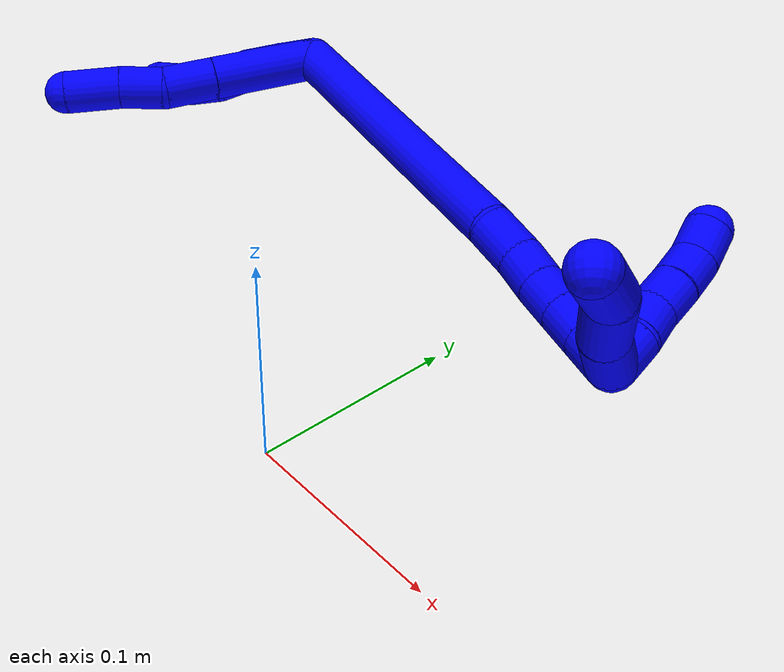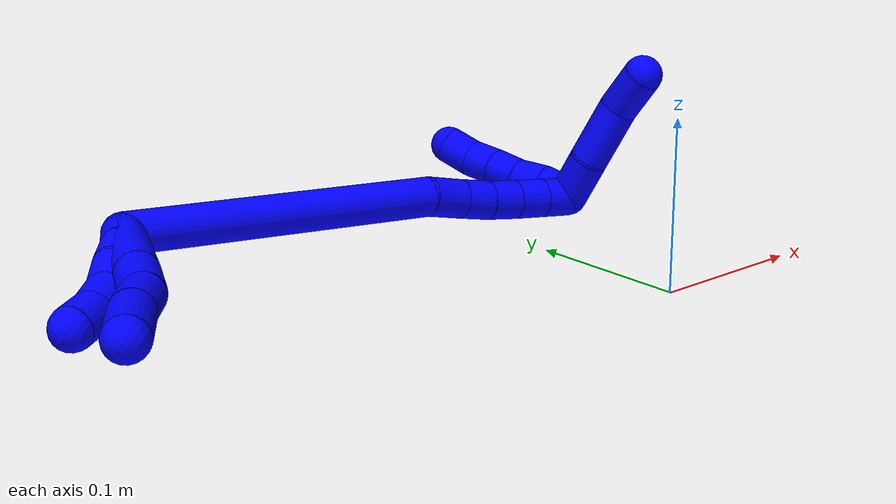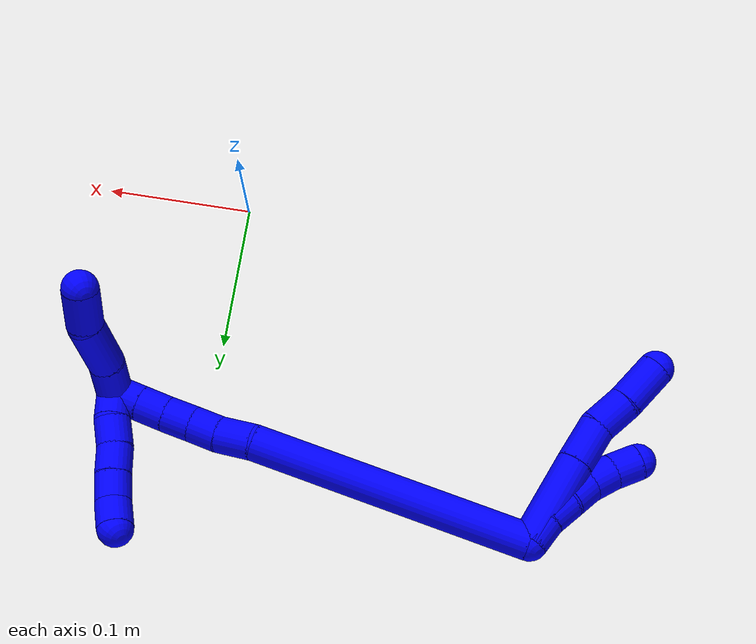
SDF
<sdf version="1.7">
 <world name="default">
  <model name="1">
   <static>0</static>
   <link name="1">
    <collision name="collision-cylinder-e_1_2_8">
     <pose>-0.027826 -0.007752 -0.01161 2.55288 -1.10579 -2.2283</pose>
     <geometry><cylinder><radius>0.0125</radius><length>0.062263</length></cylinder></geometry>
     <surface>
      <friction><ode><mu>1.16</mu><mu2>1.16</mu2><slip1>0</slip1><slip2>0</slip2></ode></friction>
      <contact><ode><kp>1e+06</kp><kd>1</kd><max_vel>0</max_vel><min_depth>0.001</min_depth></ode></contact>
     </surface>
    </collision>
    <visual name="visual-cylinder-e_1_2_8">
     <pose>-0.027826 -0.007752 -0.01161 2.55288 -1.10579 -2.2283</pose>
     <geometry><cylinder><radius>0.0125</radius><length>0.062263</length></cylinder></geometry>
     <material><ambient>0 0 1 1</ambient></material>
    </visual>
    <collision name="collision-cylinder-e_2_8_9">
     <pose>-0.06913 -0.018833 -0.028626 2.58964 -1.13058 -2.3018</pose>
     <geometry><cylinder><radius>0.0125</radius><length>0.029796</length></cylinder></geometry>
     <surface>
      <friction><ode><mu>1.16</mu><mu2>1.16</mu2><slip1>0</slip1><slip2>0</slip2></ode></friction>
      <contact><ode><kp>1e+06</kp><kd>1</kd><max_vel>0</max_vel><min_depth>0.001</min_depth></ode></contact>
     </surface>
    </collision>
    <visual name="visual-cylinder-e_2_8_9">
     <pose>-0.06913 -0.018833 -0.028626 2.58964 -1.13058 -2.3018</pose>
     <geometry><cylinder><radius>0.0125</radius><length>0.029796</length></cylinder></geometry>
     <material><ambient>0 0 1 1</ambient></material>
    </visual>
    <collision name="collision-cylinder-e_3_9_10">
     <pose>-0.095227 -0.02409 -0.034992 2.03284 -1.4017 -1.87549</pose>
     <geometry><cylinder><radius>0.0125</radius><length>0.025605</length></cylinder></geometry>
     <surface>
      <friction><ode><mu>1.16</mu><mu2>1.16</mu2><slip1>0</slip1><slip2>0</slip2></ode></friction>
      <contact><ode><kp>1e+06</kp><kd>1</kd><max_vel>0</max_vel><min_depth>0.001</min_depth></ode></contact>
     </surface>
    </collision>
    <visual name="visual-cylinder-e_3_9_10">
     <pose>-0.095227 -0.02409 -0.034992 2.03284 -1.4017 -1.87549</pose>
     <geometry><cylinder><radius>0.0125</radius><length>0.025605</length></cylinder></geometry>
     <material><ambient>0 0 1 1</ambient></material>
    </visual>
    <collision name="collision-cylinder-e_4_10_6">
     <pose>-0.123479 -0.028522 -0.039237 2.49025 -1.31255 -2.31513</pose>
     <geometry><cylinder><radius>0.0125</radius><length>0.032336</length></cylinder></geometry>
     <surface>
      <friction><ode><mu>1.16</mu><mu2>1.16</mu2><slip1>0</slip1><slip2>0</slip2></ode></friction>
      <contact><ode><kp>1e+06</kp><kd>1</kd><max_vel>0</max_vel><min_depth>0.001</min_depth></ode></contact>
     </surface>
    </collision>
    <visual name="visual-cylinder-e_4_10_6">
     <pose>-0.123479 -0.028522 -0.039237 2.49025 -1.31255 -2.31513</pose>
     <geometry><cylinder><radius>0.0125</radius><length>0.032336</length></cylinder></geometry>
     <material><ambient>0 0 1 1</ambient></material>
    </visual>
    <collision name="collision-cylinder-e_1_2_11">
     <pose>-0.009406 -0.001735 -0.002918 2.6052 -1.22445 -2.39554</pose>
     <geometry><cylinder><radius>0.0125</radius><length>0.02</length></cylinder></geometry>
     <surface>
      <friction><ode><mu>1.16</mu><mu2>1.16</mu2><slip1>0</slip1><slip2>0</slip2></ode></friction>
      <contact><ode><kp>1e+06</kp><kd>1</kd><max_vel>0</max_vel><min_depth>0.001</min_depth></ode></contact>
     </surface>
    </collision>
    <visual name="visual-cylinder-e_1_2_11">
     <pose>-0.009406 -0.001735 -0.002918 2.6052 -1.22445 -2.39554</pose>
     <geometry><cylinder><radius>0.0125</radius><length>0.02</length></cylinder></geometry>
     <material><ambient>0 0 1 1</ambient></material>
    </visual>
    <collision name="collision-cylinder-e_2_11_12">
     <pose>-0.028631 -0.002928 -0.007655 -2.85234 -1.37979 2.79218</pose>
     <geometry><cylinder><radius>0.0125</radius><length>0.02</length></cylinder></geometry>
     <surface>
      <friction><ode><mu>1.16</mu><mu2>1.16</mu2><slip1>0</slip1><slip2>0</slip2></ode></friction>
      <contact><ode><kp>1e+06</kp><kd>1</kd><max_vel>0</max_vel><min_depth>0.001</min_depth></ode></contact>
     </surface>
    </collision>
    <visual name="visual-cylinder-e_2_11_12">
     <pose>-0.028631 -0.002928 -0.007655 -2.85234 -1.37979 2.79218</pose>
     <geometry><cylinder><radius>0.0125</radius><length>0.02</length></cylinder></geometry>
     <material><ambient>0 0 1 1</ambient></material>
    </visual>
    <collision name="collision-cylinder-e_3_12_13">
     <pose>-0.047875 -0.000464 -0.012204 -2.52778 -1.23046 2.2985</pose>
     <geometry><cylinder><radius>0.0125</radius><length>0.02</length></cylinder></geometry>
     <surface>
      <friction><ode><mu>1.16</mu><mu2>1.16</mu2><slip1>0</slip1><slip2>0</slip2></ode></friction>
      <contact><ode><kp>1e+06</kp><kd>1</kd><max_vel>0</max_vel><min_depth>0.001</min_depth></ode></contact>
     </surface>
    </collision>
    <visual name="visual-cylinder-e_3_12_13">
     <pose>-0.047875 -0.000464 -0.012204 -2.52778 -1.23046 2.2985</pose>
     <geometry><cylinder><radius>0.0125</radius><length>0.02</length></cylinder></geometry>
     <material><ambient>0 0 1 1</ambient></material>
    </visual>
    <collision name="collision-cylinder-e_4_13_14">
     <pose>-0.067161 0.00309 -0.015292 -1.78758 -1.40294 1.62062</pose>
     <geometry><cylinder><radius>0.0125</radius><length>0.02</length></cylinder></geometry>
     <surface>
      <friction><ode><mu>1.16</mu><mu2>1.16</mu2><slip1>0</slip1><slip2>0</slip2></ode></friction>
      <contact><ode><kp>1e+06</kp><kd>1</kd><max_vel>0</max_vel><min_depth>0.001</min_depth></ode></contact>
     </surface>
    </collision>
    <visual name="visual-cylinder-e_4_13_14">
     <pose>-0.067161 0.00309 -0.015292 -1.78758 -1.40294 1.62062</pose>
     <geometry><cylinder><radius>0.0125</radius><length>0.02</length></cylinder></geometry>
     <material><ambient>0 0 1 1</ambient></material>
    </visual>
    <collision name="collision-cylinder-e_5_14_5">
     <pose>-0.086848 0.005813 -0.014161 -0.631845 -1.38509 0.529622</pose>
     <geometry><cylinder><radius>0.0125</radius><length>0.02</length></cylinder></geometry>
     <surface>
      <friction><ode><mu>1.16</mu><mu2>1.16</mu2><slip1>0</slip1><slip2>0</slip2></ode></friction>
      <contact><ode><kp>1e+06</kp><kd>1</kd><max_vel>0</max_vel><min_depth>0.001</min_depth></ode></contact>
     </surface>
    </collision>
    <visual name="visual-cylinder-e_5_14_5">
     <pose>-0.086848 0.005813 -0.014161 -0.631845 -1.38509 0.529622</pose>
     <geometry><cylinder><radius>0.0125</radius><length>0.02</length></cylinder></geometry>
     <material><ambient>0 0 1 1</ambient></material>
    </visual>
    <collision name="collision-cylinder-e_1_2_15">
     <pose>0.05837 -0.033647 -0.070456 2.69606 0.641949 1.9454</pose>
     <geometry><cylinder><radius>0.0125</radius><length>0.19497</length></cylinder></geometry>
     <surface>
      <friction><ode><mu>1.16</mu><mu2>1.16</mu2><slip1>0</slip1><slip2>0</slip2></ode></friction>
      <contact><ode><kp>1e+06</kp><kd>1</kd><max_vel>0</max_vel><min_depth>0.001</min_depth></ode></contact>
     </surface>
    </collision>
    <visual name="visual-cylinder-e_1_2_15">
     <pose>0.05837 -0.033647 -0.070456 2.69606 0.641949 1.9454</pose>
     <geometry><cylinder><radius>0.0125</radius><length>0.19497</length></cylinder></geometry>
     <material><ambient>0 0 1 1</ambient></material>
    </visual>
    <collision name="collision-cylinder-e_2_15_16">
     <pose>0.124683 -0.069066 -0.150412 2.95724 0.68805 2.63657</pose>
     <geometry><cylinder><radius>0.0125</radius><length>0.025018</length></cylinder></geometry>
     <surface>
      <friction><ode><mu>1.16</mu><mu2>1.16</mu2><slip1>0</slip1><slip2>0</slip2></ode></friction>
      <contact><ode><kp>1e+06</kp><kd>1</kd><max_vel>0</max_vel><min_depth>0.001</min_depth></ode></contact>
     </surface>
    </collision>
    <visual name="visual-cylinder-e_2_15_16">
     <pose>0.124683 -0.069066 -0.150412 2.95724 0.68805 2.63657</pose>
     <geometry><cylinder><radius>0.0125</radius><length>0.025018</length></cylinder></geometry>
     <material><ambient>0 0 1 1</ambient></material>
    </visual>
    <collision name="collision-cylinder-e_3_16_17">
     <pose>0.138005 -0.073174 -0.168017 2.86095 0.567599 2.23963</pose>
     <geometry><cylinder><radius>0.0125</radius><length>0.020008</length></cylinder></geometry>
     <surface>
      <friction><ode><mu>1.16</mu><mu2>1.16</mu2><slip1>0</slip1><slip2>0</slip2></ode></friction>
      <contact><ode><kp>1e+06</kp><kd>1</kd><max_vel>0</max_vel><min_depth>0.001</min_depth></ode></contact>
     </surface>
    </collision>
    <visual name="visual-cylinder-e_3_16_17">
     <pose>0.138005 -0.073174 -0.168017 2.86095 0.567599 2.23963</pose>
     <geometry><cylinder><radius>0.0125</radius><length>0.020008</length></cylinder></geometry>
     <material><ambient>0 0 1 1</ambient></material>
    </visual>
    <collision name="collision-cylinder-e_4_17_18">
     <pose>0.149065 -0.078344 -0.183851 2.79015 0.604093 2.1057</pose>
     <geometry><cylinder><radius>0.0125</radius><length>0.020004</length></cylinder></geometry>
     <surface>
      <friction><ode><mu>1.16</mu><mu2>1.16</mu2><slip1>0</slip1><slip2>0</slip2></ode></friction>
      <contact><ode><kp>1e+06</kp><kd>1</kd><max_vel>0</max_vel><min_depth>0.001</min_depth></ode></contact>
     </surface>
    </collision>
    <visual name="visual-cylinder-e_4_17_18">
     <pose>0.149065 -0.078344 -0.183851 2.79015 0.604093 2.1057</pose>
     <geometry><cylinder><radius>0.0125</radius><length>0.020004</length></cylinder></geometry>
     <material><ambient>0 0 1 1</ambient></material>
    </visual>
    <collision name="collision-cylinder-e_5_18_19">
     <pose>0.160295 -0.084416 -0.199242 2.74172 0.588292 1.96245</pose>
     <geometry><cylinder><radius>0.0125</radius><length>0.02</length></cylinder></geometry>
     <surface>
      <friction><ode><mu>1.16</mu><mu2>1.16</mu2><slip1>0</slip1><slip2>0</slip2></ode></friction>
      <contact><ode><kp>1e+06</kp><kd>1</kd><max_vel>0</max_vel><min_depth>0.001</min_depth></ode></contact>
     </surface>
    </collision>
    <visual name="visual-cylinder-e_5_18_19">
     <pose>0.160295 -0.084416 -0.199242 2.74172 0.588292 1.96245</pose>
     <geometry><cylinder><radius>0.0125</radius><length>0.02</length></cylinder></geometry>
     <material><ambient>0 0 1 1</ambient></material>
    </visual>
    <collision name="collision-cylinder-e_6_19_1">
     <pose>0.171395 -0.090892 -0.214568 2.7419 0.588377 1.96302</pose>
     <geometry><cylinder><radius>0.0125</radius><length>0.02</length></cylinder></geometry>
     <surface>
      <friction><ode><mu>1.16</mu><mu2>1.16</mu2><slip1>0</slip1><slip2>0</slip2></ode></friction>
      <contact><ode><kp>1e+06</kp><kd>1</kd><max_vel>0</max_vel><min_depth>0.001</min_depth></ode></contact>
     </surface>
    </collision>
    <visual name="visual-cylinder-e_6_19_1">
     <pose>0.171395 -0.090892 -0.214568 2.7419 0.588377 1.96302</pose>
     <geometry><cylinder><radius>0.0125</radius><length>0.02</length></cylinder></geometry>
     <material><ambient>0 0 1 1</ambient></material>
    </visual>
    <collision name="collision-cylinder-e_1_1_20">
     <pose>0.182498 -0.091667 -0.214286 -0.300461 0.588663 -0.091708</pose>
     <geometry><cylinder><radius>0.0125</radius><length>0.02</length></cylinder></geometry>
     <surface>
      <friction><ode><mu>1.16</mu><mu2>1.16</mu2><slip1>0</slip1><slip2>0</slip2></ode></friction>
      <contact><ode><kp>1e+06</kp><kd>1</kd><max_vel>0</max_vel><min_depth>0.001</min_depth></ode></contact>
     </surface>
    </collision>
    <visual name="visual-cylinder-e_1_1_20">
     <pose>0.182498 -0.091667 -0.214286 -0.300461 0.588663 -0.091708</pose>
     <geometry><cylinder><radius>0.0125</radius><length>0.02</length></cylinder></geometry>
     <material><ambient>0 0 1 1</ambient></material>
    </visual>
    <collision name="collision-cylinder-e_2_20_21">
     <pose>0.192118 -0.085004 -0.19823 -0.477945 0.418889 -0.10348</pose>
     <geometry><cylinder><radius>0.0125</radius><length>0.02</length></cylinder></geometry>
     <surface>
      <friction><ode><mu>1.16</mu><mu2>1.16</mu2><slip1>0</slip1><slip2>0</slip2></ode></friction>
      <contact><ode><kp>1e+06</kp><kd>1</kd><max_vel>0</max_vel><min_depth>0.001</min_depth></ode></contact>
     </surface>
    </collision>
    <visual name="visual-cylinder-e_2_20_21">
     <pose>0.192118 -0.085004 -0.19823 -0.477945 0.418889 -0.10348</pose>
     <geometry><cylinder><radius>0.0125</radius><length>0.02</length></cylinder></geometry>
     <material><ambient>0 0 1 1</ambient></material>
    </visual>
    <collision name="collision-cylinder-e_3_21_22">
     <pose>0.201577 -0.077856 -0.182229 -0.357382 0.569483 -0.105633</pose>
     <geometry><cylinder><radius>0.0125</radius><length>0.02</length></cylinder></geometry>
     <surface>
      <friction><ode><mu>1.16</mu><mu2>1.16</mu2><slip1>0</slip1><slip2>0</slip2></ode></friction>
      <contact><ode><kp>1e+06</kp><kd>1</kd><max_vel>0</max_vel><min_depth>0.001</min_depth></ode></contact>
     </surface>
    </collision>
    <visual name="visual-cylinder-e_3_21_22">
     <pose>0.201577 -0.077856 -0.182229 -0.357382 0.569483 -0.105633</pose>
     <geometry><cylinder><radius>0.0125</radius><length>0.02</length></cylinder></geometry>
     <material><ambient>0 0 1 1</ambient></material>
    </visual>
    <collision name="collision-cylinder-e_4_22_23">
     <pose>0.211778 -0.071578 -0.166229 -0.389752 0.501695 -0.101069</pose>
     <geometry><cylinder><radius>0.0125</radius><length>0.02</length></cylinder></geometry>
     <surface>
      <friction><ode><mu>1.16</mu><mu2>1.16</mu2><slip1>0</slip1><slip2>0</slip2></ode></friction>
      <contact><ode><kp>1e+06</kp><kd>1</kd><max_vel>0</max_vel><min_depth>0.001</min_depth></ode></contact>
     </surface>
    </collision>
    <visual name="visual-cylinder-e_4_22_23">
     <pose>0.211778 -0.071578 -0.166229 -0.389752 0.501695 -0.101069</pose>
     <geometry><cylinder><radius>0.0125</radius><length>0.02</length></cylinder></geometry>
     <material><ambient>0 0 1 1</ambient></material>
    </visual>
    <collision name="collision-cylinder-e_5_23_4">
     <pose>0.220422 -0.066797 -0.148998 -0.157628 0.393544 -0.031486</pose>
     <geometry><cylinder><radius>0.0125</radius><length>0.02</length></cylinder></geometry>
     <surface>
      <friction><ode><mu>1.16</mu><mu2>1.16</mu2><slip1>0</slip1><slip2>0</slip2></ode></friction>
      <contact><ode><kp>1e+06</kp><kd>1</kd><max_vel>0</max_vel><min_depth>0.001</min_depth></ode></contact>
     </surface>
    </collision>
    <visual name="visual-cylinder-e_5_23_4">
     <pose>0.220422 -0.066797 -0.148998 -0.157628 0.393544 -0.031486</pose>
     <geometry><cylinder><radius>0.0125</radius><length>0.02</length></cylinder></geometry>
     <material><ambient>0 0 1 1</ambient></material>
    </visual>
    <collision name="collision-cylinder-e_1_1_24">
     <pose>0.174975 -0.109314 -0.220914 1.48431 -0.128567 -0.117928</pose>
     <geometry><cylinder><radius>0.0125</radius><length>0.030738</length></cylinder></geometry>
     <surface>
      <friction><ode><mu>1.16</mu><mu2>1.16</mu2><slip1>0</slip1><slip2>0</slip2></ode></friction>
      <contact><ode><kp>1e+06</kp><kd>1</kd><max_vel>0</max_vel><min_depth>0.001</min_depth></ode></contact>
     </surface>
    </collision>
    <visual name="visual-cylinder-e_1_1_24">
     <pose>0.174975 -0.109314 -0.220914 1.48431 -0.128567 -0.117928</pose>
     <geometry><cylinder><radius>0.0125</radius><length>0.030738</length></cylinder></geometry>
     <material><ambient>0 0 1 1</ambient></material>
    </visual>
    <collision name="collision-cylinder-e_2_24_25">
     <pose>0.173813 -0.144451 -0.218405 1.51111 0.040465 0.03812</pose>
     <geometry><cylinder><radius>0.0125</radius><length>0.040009</length></cylinder></geometry>
     <surface>
      <friction><ode><mu>1.16</mu><mu2>1.16</mu2><slip1>0</slip1><slip2>0</slip2></ode></friction>
      <contact><ode><kp>1e+06</kp><kd>1</kd><max_vel>0</max_vel><min_depth>0.001</min_depth></ode></contact>
     </surface>
    </collision>
    <visual name="visual-cylinder-e_2_24_25">
     <pose>0.173813 -0.144451 -0.218405 1.51111 0.040465 0.03812</pose>
     <geometry><cylinder><radius>0.0125</radius><length>0.040009</length></cylinder></geometry>
     <material><ambient>0 0 1 1</ambient></material>
    </visual>
    <collision name="collision-cylinder-e_3_25_3">
     <pose>0.170852 -0.178535 -0.217358 1.5811 -0.260738 -0.263407</pose>
     <geometry><cylinder><radius>0.0125</radius><length>0.029253</length></cylinder></geometry>
     <surface>
      <friction><ode><mu>1.16</mu><mu2>1.16</mu2><slip1>0</slip1><slip2>0</slip2></ode></friction>
      <contact><ode><kp>1e+06</kp><kd>1</kd><max_vel>0</max_vel><min_depth>0.001</min_depth></ode></contact>
     </surface>
    </collision>
    <visual name="visual-cylinder-e_3_25_3">
     <pose>0.170852 -0.178535 -0.217358 1.5811 -0.260738 -0.263407</pose>
     <geometry><cylinder><radius>0.0125</radius><length>0.029253</length></cylinder></geometry>
     <material><ambient>0 0 1 1</ambient></material>
    </visual>
    <collision name="collision-sphere-3">
     <pose>0.167081 -0.192667 -0.217504 0 -0 0</pose>
     <geometry><sphere><radius>0.0125</radius></sphere></geometry>
     <surface>
      <friction><ode><mu>1.16</mu><mu2>1.16</mu2><slip1>0</slip1><slip2>0</slip2></ode></friction>
      <contact><ode><kp>1e+06</kp><kd>1</kd><max_vel>0</max_vel><min_depth>0.001</min_depth></ode></contact>
     </surface>
    </collision>
    <visual name="visual-sphere-3">
     <pose>0.167081 -0.192667 -0.217504 0 -0 0</pose>
     <geometry><sphere><radius>0.0125</radius></sphere></geometry>
     <material><ambient>0 0 1 1</ambient></material>
    </visual>
    <collision name="collision-sphere-25">
     <pose>0.174623 -0.164404 -0.217213 0 -0 0</pose>
     <geometry><sphere><radius>0.0125</radius></sphere></geometry>
     <surface>
      <friction><ode><mu>1.16</mu><mu2>1.16</mu2><slip1>0</slip1><slip2>0</slip2></ode></friction>
      <contact><ode><kp>1e+06</kp><kd>1</kd><max_vel>0</max_vel><min_depth>0.001</min_depth></ode></contact>
     </surface>
    </collision>
    <visual name="visual-sphere-25">
     <pose>0.174623 -0.164404 -0.217213 0 -0 0</pose>
     <geometry><sphere><radius>0.0125</radius></sphere></geometry>
     <material><ambient>0 0 1 1</ambient></material>
    </visual>
    <collision name="collision-sphere-24">
     <pose>0.173004 -0.124499 -0.219598 0 -0 0</pose>
     <geometry><sphere><radius>0.0125</radius></sphere></geometry>
     <surface>
      <friction><ode><mu>1.16</mu><mu2>1.16</mu2><slip1>0</slip1><slip2>0</slip2></ode></friction>
      <contact><ode><kp>1e+06</kp><kd>1</kd><max_vel>0</max_vel><min_depth>0.001</min_depth></ode></contact>
     </surface>
    </collision>
    <visual name="visual-sphere-24">
     <pose>0.173004 -0.124499 -0.219598 0 -0 0</pose>
     <geometry><sphere><radius>0.0125</radius></sphere></geometry>
     <material><ambient>0 0 1 1</ambient></material>
    </visual>
    <collision name="collision-sphere-4">
     <pose>0.224256 -0.065348 -0.139877 0 -0 0</pose>
     <geometry><sphere><radius>0.0125</radius></sphere></geometry>
     <surface>
      <friction><ode><mu>1.16</mu><mu2>1.16</mu2><slip1>0</slip1><slip2>0</slip2></ode></friction>
      <contact><ode><kp>1e+06</kp><kd>1</kd><max_vel>0</max_vel><min_depth>0.001</min_depth></ode></contact>
     </surface>
    </collision>
    <visual name="visual-sphere-4">
     <pose>0.224256 -0.065348 -0.139877 0 -0 0</pose>
     <geometry><sphere><radius>0.0125</radius></sphere></geometry>
     <material><ambient>0 0 1 1</ambient></material>
    </visual>
    <collision name="collision-sphere-23">
     <pose>0.216587 -0.068247 -0.158119 0 -0 0</pose>
     <geometry><sphere><radius>0.0125</radius></sphere></geometry>
     <surface>
      <friction><ode><mu>1.16</mu><mu2>1.16</mu2><slip1>0</slip1><slip2>0</slip2></ode></friction>
      <contact><ode><kp>1e+06</kp><kd>1</kd><max_vel>0</max_vel><min_depth>0.001</min_depth></ode></contact>
     </surface>
    </collision>
    <visual name="visual-sphere-23">
     <pose>0.216587 -0.068247 -0.158119 0 -0 0</pose>
     <geometry><sphere><radius>0.0125</radius></sphere></geometry>
     <material><ambient>0 0 1 1</ambient></material>
    </visual>
    <collision name="collision-sphere-22">
     <pose>0.206969 -0.07491 -0.174339 0 -0 0</pose>
     <geometry><sphere><radius>0.0125</radius></sphere></geometry>
     <surface>
      <friction><ode><mu>1.16</mu><mu2>1.16</mu2><slip1>0</slip1><slip2>0</slip2></ode></friction>
      <contact><ode><kp>1e+06</kp><kd>1</kd><max_vel>0</max_vel><min_depth>0.001</min_depth></ode></contact>
     </surface>
    </collision>
    <visual name="visual-sphere-22">
     <pose>0.206969 -0.07491 -0.174339 0 -0 0</pose>
     <geometry><sphere><radius>0.0125</radius></sphere></geometry>
     <material><ambient>0 0 1 1</ambient></material>
    </visual>
    <collision name="collision-sphere-21">
     <pose>0.196185 -0.080802 -0.190119 0 -0 0</pose>
     <geometry><sphere><radius>0.0125</radius></sphere></geometry>
     <surface>
      <friction><ode><mu>1.16</mu><mu2>1.16</mu2><slip1>0</slip1><slip2>0</slip2></ode></friction>
      <contact><ode><kp>1e+06</kp><kd>1</kd><max_vel>0</max_vel><min_depth>0.001</min_depth></ode></contact>
     </surface>
    </collision>
    <visual name="visual-sphere-21">
     <pose>0.196185 -0.080802 -0.190119 0 -0 0</pose>
     <geometry><sphere><radius>0.0125</radius></sphere></geometry>
     <material><ambient>0 0 1 1</ambient></material>
    </visual>
    <collision name="collision-sphere-20">
     <pose>0.18805 -0.089206 -0.206342 0 -0 0</pose>
     <geometry><sphere><radius>0.0125</radius></sphere></geometry>
     <surface>
      <friction><ode><mu>1.16</mu><mu2>1.16</mu2><slip1>0</slip1><slip2>0</slip2></ode></friction>
      <contact><ode><kp>1e+06</kp><kd>1</kd><max_vel>0</max_vel><min_depth>0.001</min_depth></ode></contact>
     </surface>
    </collision>
    <visual name="visual-sphere-20">
     <pose>0.18805 -0.089206 -0.206342 0 -0 0</pose>
     <geometry><sphere><radius>0.0125</radius></sphere></geometry>
     <material><ambient>0 0 1 1</ambient></material>
    </visual>
    <collision name="collision-sphere-11">
     <pose>-0.018812 -0.00347 -0.005836 0 -0 0</pose>
     <geometry><sphere><radius>0.0125</radius></sphere></geometry>
     <surface>
      <friction><ode><mu>1.16</mu><mu2>1.16</mu2><slip1>0</slip1><slip2>0</slip2></ode></friction>
      <contact><ode><kp>1e+06</kp><kd>1</kd><max_vel>0</max_vel><min_depth>0.001</min_depth></ode></contact>
     </surface>
    </collision>
    <visual name="visual-sphere-11">
     <pose>-0.018812 -0.00347 -0.005836 0 -0 0</pose>
     <geometry><sphere><radius>0.0125</radius></sphere></geometry>
     <material><ambient>0 0 1 1</ambient></material>
    </visual>
    <collision name="collision-sphere-6">
     <pose>-0.139111 -0.031026 -0.04252 0 -0 0</pose>
     <geometry><sphere><radius>0.0125</radius></sphere></geometry>
     <surface>
      <friction><ode><mu>1.16</mu><mu2>1.16</mu2><slip1>0</slip1><slip2>0</slip2></ode></friction>
      <contact><ode><kp>1e+06</kp><kd>1</kd><max_vel>0</max_vel><min_depth>0.001</min_depth></ode></contact>
     </surface>
    </collision>
    <visual name="visual-sphere-6">
     <pose>-0.139111 -0.031026 -0.04252 0 -0 0</pose>
     <geometry><sphere><radius>0.0125</radius></sphere></geometry>
     <material><ambient>0 0 1 1</ambient></material>
    </visual>
    <collision name="collision-sphere-10">
     <pose>-0.107847 -0.026019 -0.035953 0 -0 0</pose>
     <geometry><sphere><radius>0.0125</radius></sphere></geometry>
     <surface>
      <friction><ode><mu>1.16</mu><mu2>1.16</mu2><slip1>0</slip1><slip2>0</slip2></ode></friction>
      <contact><ode><kp>1e+06</kp><kd>1</kd><max_vel>0</max_vel><min_depth>0.001</min_depth></ode></contact>
     </surface>
    </collision>
    <visual name="visual-sphere-10">
     <pose>-0.107847 -0.026019 -0.035953 0 -0 0</pose>
     <geometry><sphere><radius>0.0125</radius></sphere></geometry>
     <material><ambient>0 0 1 1</ambient></material>
    </visual>
    <collision name="collision-sphere-9">
     <pose>-0.082607 -0.022162 -0.034032 0 -0 0</pose>
     <geometry><sphere><radius>0.0125</radius></sphere></geometry>
     <surface>
      <friction><ode><mu>1.16</mu><mu2>1.16</mu2><slip1>0</slip1><slip2>0</slip2></ode></friction>
      <contact><ode><kp>1e+06</kp><kd>1</kd><max_vel>0</max_vel><min_depth>0.001</min_depth></ode></contact>
     </surface>
    </collision>
    <visual name="visual-sphere-9">
     <pose>-0.082607 -0.022162 -0.034032 0 -0 0</pose>
     <geometry><sphere><radius>0.0125</radius></sphere></geometry>
     <material><ambient>0 0 1 1</ambient></material>
    </visual>
    <collision name="collision-sphere-2">
     <geometry><sphere><radius>0.0125</radius></sphere></geometry>
     <surface>
      <friction><ode><mu>1.16</mu><mu2>1.16</mu2><slip1>0</slip1><slip2>0</slip2></ode></friction>
      <contact><ode><kp>1e+06</kp><kd>1</kd><max_vel>0</max_vel><min_depth>0.001</min_depth></ode></contact>
     </surface>
    </collision>
    <visual name="visual-sphere-2">
     <geometry><sphere><radius>0.0125</radius></sphere></geometry>
     <material><ambient>0 0 1 1</ambient></material>
    </visual>
    <collision name="collision-sphere-19">
     <pose>0.165845 -0.087655 -0.206905 0 -0 0</pose>
     <geometry><sphere><radius>0.0125</radius></sphere></geometry>
     <surface>
      <friction><ode><mu>1.16</mu><mu2>1.16</mu2><slip1>0</slip1><slip2>0</slip2></ode></friction>
      <contact><ode><kp>1e+06</kp><kd>1</kd><max_vel>0</max_vel><min_depth>0.001</min_depth></ode></contact>
     </surface>
    </collision>
    <visual name="visual-sphere-19">
     <pose>0.165845 -0.087655 -0.206905 0 -0 0</pose>
     <geometry><sphere><radius>0.0125</radius></sphere></geometry>
     <material><ambient>0 0 1 1</ambient></material>
    </visual>
    <collision name="collision-sphere-8">
     <pose>-0.055652 -0.015504 -0.02322 0 -0 0</pose>
     <geometry><sphere><radius>0.0125</radius></sphere></geometry>
     <surface>
      <friction><ode><mu>1.16</mu><mu2>1.16</mu2><slip1>0</slip1><slip2>0</slip2></ode></friction>
      <contact><ode><kp>1e+06</kp><kd>1</kd><max_vel>0</max_vel><min_depth>0.001</min_depth></ode></contact>
     </surface>
    </collision>
    <visual name="visual-sphere-8">
     <pose>-0.055652 -0.015504 -0.02322 0 -0 0</pose>
     <geometry><sphere><radius>0.0125</radius></sphere></geometry>
     <material><ambient>0 0 1 1</ambient></material>
    </visual>
    <collision name="collision-sphere-12">
     <pose>-0.038449 -0.002387 -0.009475 0 -0 0</pose>
     <geometry><sphere><radius>0.0125</radius></sphere></geometry>
     <surface>
      <friction><ode><mu>1.16</mu><mu2>1.16</mu2><slip1>0</slip1><slip2>0</slip2></ode></friction>
      <contact><ode><kp>1e+06</kp><kd>1</kd><max_vel>0</max_vel><min_depth>0.001</min_depth></ode></contact>
     </surface>
    </collision>
    <visual name="visual-sphere-12">
     <pose>-0.038449 -0.002387 -0.009475 0 -0 0</pose>
     <geometry><sphere><radius>0.0125</radius></sphere></geometry>
     <material><ambient>0 0 1 1</ambient></material>
    </visual>
    <collision name="collision-sphere-13">
     <pose>-0.057301 0.001459 -0.014932 0 -0 0</pose>
     <geometry><sphere><radius>0.0125</radius></sphere></geometry>
     <surface>
      <friction><ode><mu>1.16</mu><mu2>1.16</mu2><slip1>0</slip1><slip2>0</slip2></ode></friction>
      <contact><ode><kp>1e+06</kp><kd>1</kd><max_vel>0</max_vel><min_depth>0.001</min_depth></ode></contact>
     </surface>
    </collision>
    <visual name="visual-sphere-13">
     <pose>-0.057301 0.001459 -0.014932 0 -0 0</pose>
     <geometry><sphere><radius>0.0125</radius></sphere></geometry>
     <material><ambient>0 0 1 1</ambient></material>
    </visual>
    <collision name="collision-sphere-14">
     <pose>-0.07702 0.004722 -0.015651 0 -0 0</pose>
     <geometry><sphere><radius>0.0125</radius></sphere></geometry>
     <surface>
      <friction><ode><mu>1.16</mu><mu2>1.16</mu2><slip1>0</slip1><slip2>0</slip2></ode></friction>
      <contact><ode><kp>1e+06</kp><kd>1</kd><max_vel>0</max_vel><min_depth>0.001</min_depth></ode></contact>
     </surface>
    </collision>
    <visual name="visual-sphere-14">
     <pose>-0.07702 0.004722 -0.015651 0 -0 0</pose>
     <geometry><sphere><radius>0.0125</radius></sphere></geometry>
     <material><ambient>0 0 1 1</ambient></material>
    </visual>
    <collision name="collision-sphere-5">
     <pose>-0.096676 0.006903 -0.012671 0 -0 0</pose>
     <geometry><sphere><radius>0.0125</radius></sphere></geometry>
     <surface>
      <friction><ode><mu>1.16</mu><mu2>1.16</mu2><slip1>0</slip1><slip2>0</slip2></ode></friction>
      <contact><ode><kp>1e+06</kp><kd>1</kd><max_vel>0</max_vel><min_depth>0.001</min_depth></ode></contact>
     </surface>
    </collision>
    <visual name="visual-sphere-5">
     <pose>-0.096676 0.006903 -0.012671 0 -0 0</pose>
     <geometry><sphere><radius>0.0125</radius></sphere></geometry>
     <material><ambient>0 0 1 1</ambient></material>
    </visual>
    <collision name="collision-sphere-15">
     <pose>0.116739 -0.067295 -0.140913 0 -0 0</pose>
     <geometry><sphere><radius>0.0125</radius></sphere></geometry>
     <surface>
      <friction><ode><mu>1.16</mu><mu2>1.16</mu2><slip1>0</slip1><slip2>0</slip2></ode></friction>
      <contact><ode><kp>1e+06</kp><kd>1</kd><max_vel>0</max_vel><min_depth>0.001</min_depth></ode></contact>
     </surface>
    </collision>
    <visual name="visual-sphere-15">
     <pose>0.116739 -0.067295 -0.140913 0 -0 0</pose>
     <geometry><sphere><radius>0.0125</radius></sphere></geometry>
     <material><ambient>0 0 1 1</ambient></material>
    </visual>
    <collision name="collision-sphere-16">
     <pose>0.132627 -0.070837 -0.159911 0 -0 0</pose>
     <geometry><sphere><radius>0.0125</radius></sphere></geometry>
     <surface>
      <friction><ode><mu>1.16</mu><mu2>1.16</mu2><slip1>0</slip1><slip2>0</slip2></ode></friction>
      <contact><ode><kp>1e+06</kp><kd>1</kd><max_vel>0</max_vel><min_depth>0.001</min_depth></ode></contact>
     </surface>
    </collision>
    <visual name="visual-sphere-16">
     <pose>0.132627 -0.070837 -0.159911 0 -0 0</pose>
     <geometry><sphere><radius>0.0125</radius></sphere></geometry>
     <material><ambient>0 0 1 1</ambient></material>
    </visual>
    <collision name="collision-sphere-17">
     <pose>0.143383 -0.07551 -0.176122 0 -0 0</pose>
     <geometry><sphere><radius>0.0125</radius></sphere></geometry>
     <surface>
      <friction><ode><mu>1.16</mu><mu2>1.16</mu2><slip1>0</slip1><slip2>0</slip2></ode></friction>
      <contact><ode><kp>1e+06</kp><kd>1</kd><max_vel>0</max_vel><min_depth>0.001</min_depth></ode></contact>
     </surface>
    </collision>
    <visual name="visual-sphere-17">
     <pose>0.143383 -0.07551 -0.176122 0 -0 0</pose>
     <geometry><sphere><radius>0.0125</radius></sphere></geometry>
     <material><ambient>0 0 1 1</ambient></material>
    </visual>
    <collision name="collision-sphere-18">
     <pose>0.154746 -0.081178 -0.19158 0 -0 0</pose>
     <geometry><sphere><radius>0.0125</radius></sphere></geometry>
     <surface>
      <friction><ode><mu>1.16</mu><mu2>1.16</mu2><slip1>0</slip1><slip2>0</slip2></ode></friction>
      <contact><ode><kp>1e+06</kp><kd>1</kd><max_vel>0</max_vel><min_depth>0.001</min_depth></ode></contact>
     </surface>
    </collision>
    <visual name="visual-sphere-18">
     <pose>0.154746 -0.081178 -0.19158 0 -0 0</pose>
     <geometry><sphere><radius>0.0125</radius></sphere></geometry>
     <material><ambient>0 0 1 1</ambient></material>
    </visual>
    <collision name="collision-sphere-1">
     <pose>0.176945 -0.094129 -0.222231 0 -0 0</pose>
     <geometry><sphere><radius>0.0125</radius></sphere></geometry>
     <surface>
      <friction><ode><mu>1.16</mu><mu2>1.16</mu2><slip1>0</slip1><slip2>0</slip2></ode></friction>
      <contact><ode><kp>1e+06</kp><kd>1</kd><max_vel>0</max_vel><min_depth>0.001</min_depth></ode></contact>
     </surface>
    </collision>
    <visual name="visual-sphere-1">
     <pose>0.176945 -0.094129 -0.222231 0 -0 0</pose>
     <geometry><sphere><radius>0.0125</radius></sphere></geometry>
     <material><ambient>0 0 1 1</ambient></material>
    </visual>
    <inertial>
     <pose>0.065804 -0.052738 -0.103583 0 -0 0</pose>
     <mass>0.75</mass>
     <inertia>
      <ixx>0.000282</ixx>
      <ixy>0</ixy>
      <ixz>0</ixz>
      <iyy>0.000852</iyy>
      <iyz>0</iyz>
      <izz>-0.000124</izz>
     </inertia>
    </inertial>
   </link>
   <pose>-0.226914 0.207187 0.031296 -1.03274 -0.075689 0.727437</pose>
  </model>
 </world>
</sdf>
